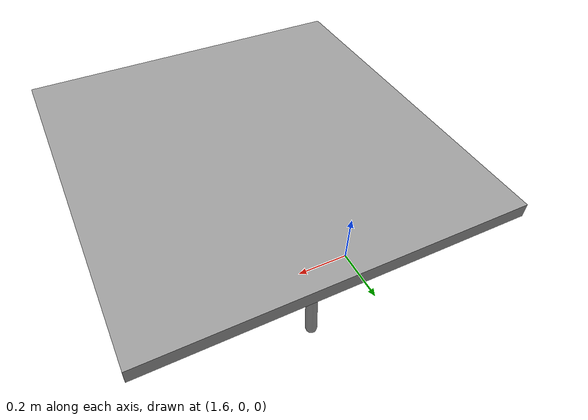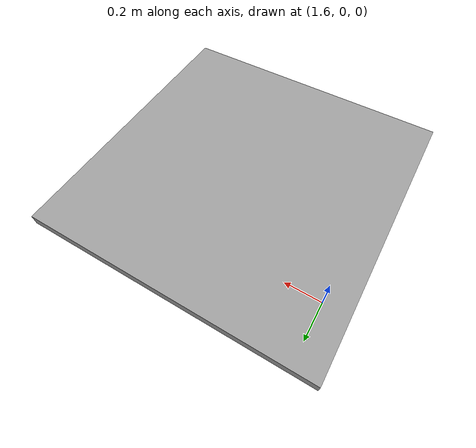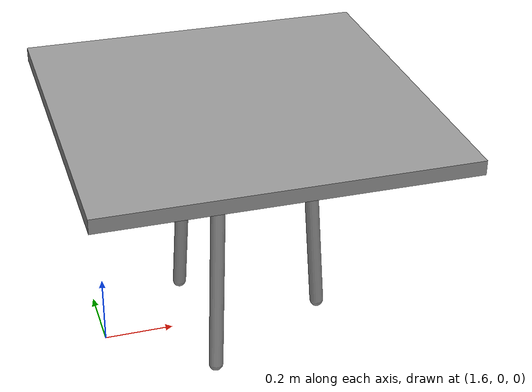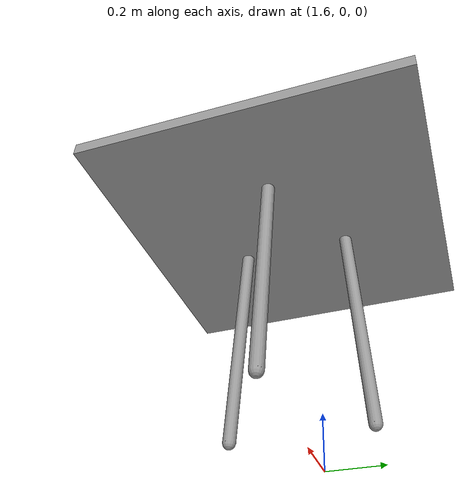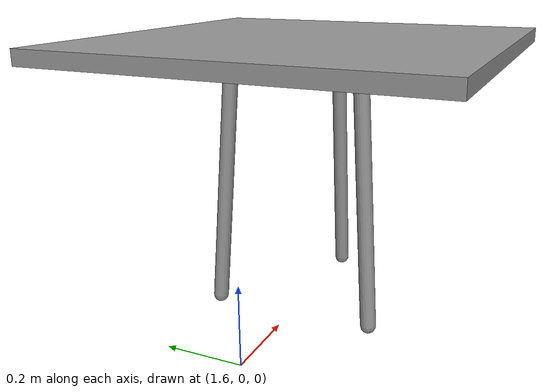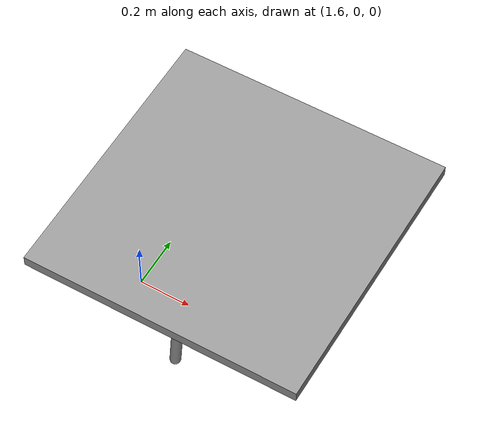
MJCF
<?xml version="1.0" encoding="utf-8"?>
<!-- from https://github.com/vikashplus/mj_envs/tree/master/mj_envs/hand_manipulation_suite/assets -->
<!-- Information about door can be found in this paper: https://arxiv.org/pdf/1709.10087.pdf -->

<mujoco model="table">
  <asset>
    <texture file="textures/gray-plaster.png" type="cube" name="dark-wood" />
    <material name="MatDarkWood" texture="dark-wood" texrepeat="3 3" specular="0.4" shininess="0.1" />
  </asset>
  <worldbody>
    <body>
      <body name="object" pos="2 0 0">
        <inertial pos="0 0 0" mass="1.47392" diaginertia="0.472637 0.580381 0.109316"/>
        <site name="origin" pos="0 0 0" rgba="0 0 0 0" size="0.005"/>

        <body name="body">
          <geom pos="0 0.0 0.7" size="0.5 0.5 0.02" type="box" friction="1 1 1" group="0" material="MatDarkWood"/>

          <body>
            <geom fromto="0.25 0 0.01 0.2 0 0.7" size="0.02" type="capsule" friction="1 1 1" group="0" material="MatDarkWood"/>
          </body>

          <body quat="0.5 0 0 0.8660254">
            <geom fromto="0.25 0 0.01 0.2 0 0.7" size="0.02" type="capsule" friction="1 1 1" group="0" material="MatDarkWood"/>
          </body>

          <body quat="0.5 0 0 -0.8660254">
            <geom fromto="0.25 0 0.01 0.2 0 0.7" size="0.02" type="capsule" friction="1 1 1" group="0" material="MatDarkWood"/>
          </body>

        </body>

      </body>
      <site name="bottom_site" pos="0 0 -0.0207" rgba="0 0 0 0" size="0.005"/>
      <site name="top_site" pos="0 0 0.007" rgba="0 0 0 0" size="0.005"/>
      <site name="horizontal_radius_site" pos="0 0 0" rgba="0 0 0 0" size="0.003"/>
    </body>

  </worldbody>
</mujoco>
